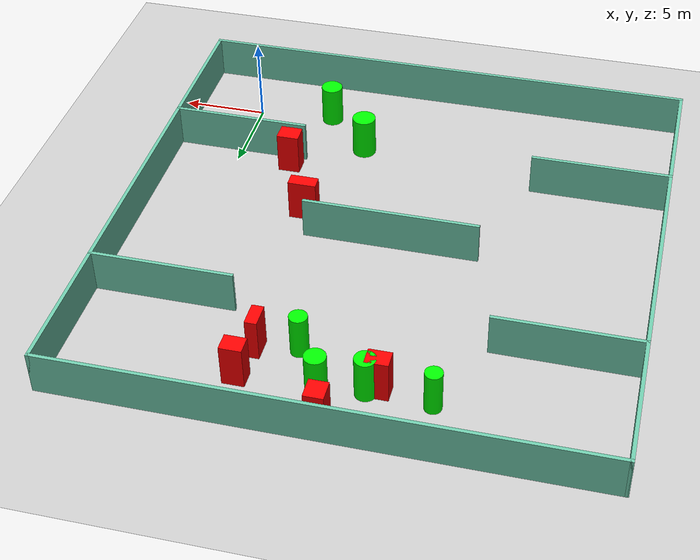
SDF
<sdf version="1.7">
 <world name="default">
  <light name="sun" type="directional">
   <pose>0 0 10 0 -0 0</pose>
   <diffuse>0.8 0.8 0.8 1</diffuse>
   <specular>0.2 0.2 0.2 1</specular>
   <attenuation>
    <range>1000</range>
    <constant>0.9</constant>
    <linear>0.01</linear>
    <quadratic>0.001</quadratic>
   </attenuation>
   <direction>-0.5 0.1 -0.9</direction>
   <spot><inner_angle>0</inner_angle><outer_angle>0</outer_angle><falloff>0</falloff></spot>
  </light>
  <model name="ground_plane">
   <static>1</static>
   <link name="link">
    <collision name="collision">
     <geometry><plane><normal>0 0 1</normal><size>100 100</size></plane></geometry>
     <surface>
      <contact><collide_bitmask>65535</collide_bitmask></contact>
      <friction><ode><mu>100</mu><mu2>50</mu2></ode></friction>
     </surface>
    </collision>
    <visual name="visual">
     <cast_shadows>0</cast_shadows>
     <geometry><plane><normal>0 0 1</normal><size>100 100</size></plane></geometry>
     <material>
      <script><uri>file://media/materials/scripts/gazebo.material</uri><name>Gazebo/Grey</name></script>
     </material>
    </visual>
   </link>
  </model>
  <gravity>0 0 -9.8</gravity>
  <magnetic_field>6e-06 2.3e-05 -4.2e-05</magnetic_field>
  <atmosphere type="adiabatic"/>
  <physics type="ode">
   <max_step_size>0.001</max_step_size>
   <real_time_factor>1</real_time_factor>
   <real_time_update_rate>1000</real_time_update_rate>
  </physics>
  <scene><ambient>0.4 0.4 0.4 1</ambient><background>0.7 0.7 0.7 1</background><shadows>1</shadows></scene>
  <spherical_coordinates>
   <surface_model>EARTH_WGS84</surface_model>
   <latitude_deg>0</latitude_deg>
   <longitude_deg>0</longitude_deg>
   <elevation>0</elevation>
   <heading_deg>0</heading_deg>
  </spherical_coordinates>
  <model name="my_base_walls">
   <link name="Wall_10">
    <collision name="Wall_10_Collision">
     <geometry><box><size>8.2 0.2 2.5</size></box></geometry>
     <pose>0 0 1.25 0 -0 0</pose>
    </collision>
    <visual name="Wall_10_Visual">
     <pose>0 0 1.25 0 -0 0</pose>
     <geometry><box><size>8.2 0.2 2.5</size></box></geometry>
     <material>
      <script><uri>file://media/materials/scripts/gazebo.material</uri><name>Gazebo/Grey</name></script>
      <ambient>0.435294 0.796078 0.67451 1</ambient>
     </material>
     <meta><layer>0</layer></meta>
    </visual>
    <pose>-11 -7 0 0 -0 0</pose>
   </link>
   <link name="Wall_12">
    <collision name="Wall_12_Collision">
     <geometry><box><size>8.2 0.2 2.5</size></box></geometry>
     <pose>0 0 1.25 0 -0 0</pose>
    </collision>
    <visual name="Wall_12_Visual">
     <pose>0 0 1.25 0 -0 0</pose>
     <geometry><box><size>8.2 0.2 2.5</size></box></geometry>
     <material>
      <script><uri>file://media/materials/scripts/gazebo.material</uri><name>Gazebo/Grey</name></script>
      <ambient>0.435294 0.796078 0.67451 1</ambient>
     </material>
     <meta><layer>0</layer></meta>
    </visual>
    <pose>-11 7 0 0 -0 0</pose>
   </link>
   <link name="Wall_14">
    <collision name="Wall_14_Collision">
     <geometry><box><size>8.2 0.2 2.5</size></box></geometry>
     <pose>0 0 1.25 0 -0 0</pose>
    </collision>
    <visual name="Wall_14_Visual">
     <pose>0 0 1.25 0 -0 0</pose>
     <geometry><box><size>8.2 0.2 2.5</size></box></geometry>
     <material>
      <script><uri>file://media/materials/scripts/gazebo.material</uri><name>Gazebo/Grey</name></script>
      <ambient>0.435294 0.796078 0.67451 1</ambient>
     </material>
     <meta><layer>0</layer></meta>
    </visual>
    <pose>11 7 0 0 -0 3.14159</pose>
   </link>
   <link name="Wall_16">
    <collision name="Wall_16_Collision">
     <geometry><box><size>10.2 0.2 2.5</size></box></geometry>
     <pose>0 0 1.25 0 -0 0</pose>
    </collision>
    <visual name="Wall_16_Visual">
     <pose>0 0 1.25 0 -0 0</pose>
     <geometry><box><size>10.2 0.2 2.5</size></box></geometry>
     <material>
      <script><uri>file://media/materials/scripts/gazebo.material</uri><name>Gazebo/Grey</name></script>
      <ambient>0.435294 0.796078 0.67451 1</ambient>
     </material>
     <meta><layer>0</layer></meta>
    </visual>
    <pose>0 0 0 0 -0 3.14159</pose>
   </link>
   <link name="Wall_2">
    <collision name="Wall_2_Collision">
     <geometry><box><size>30.2 0.2 2.5</size></box></geometry>
     <pose>0 0 1.25 0 -0 0</pose>
    </collision>
    <visual name="Wall_2_Visual">
     <pose>0 0 1.25 0 -0 0</pose>
     <geometry><box><size>30.2 0.2 2.5</size></box></geometry>
     <material>
      <script><uri>file://media/materials/scripts/gazebo.material</uri><name>Gazebo/Grey</name></script>
      <ambient>0.435294 0.796078 0.67451 1</ambient>
     </material>
     <meta><layer>0</layer></meta>
    </visual>
    <pose>0 -15 0 0 -0 3.14159</pose>
   </link>
   <link name="Wall_3">
    <collision name="Wall_3_Collision">
     <geometry><box><size>30.2 0.2 2.5</size></box></geometry>
     <pose>0 0 1.25 0 -0 0</pose>
    </collision>
    <visual name="Wall_3_Visual">
     <pose>0 0 1.25 0 -0 0</pose>
     <geometry><box><size>30.2 0.2 2.5</size></box></geometry>
     <material>
      <script><uri>file://media/materials/scripts/gazebo.material</uri><name>Gazebo/Grey</name></script>
      <ambient>0.435294 0.796078 0.67451 1</ambient>
     </material>
     <meta><layer>0</layer></meta>
    </visual>
    <pose>-15 0 0 0 -0 1.5708</pose>
   </link>
   <link name="Wall_4">
    <collision name="Wall_4_Collision">
     <geometry><box><size>30.2 0.2 2.5</size></box></geometry>
     <pose>0 0 1.25 0 -0 0</pose>
    </collision>
    <visual name="Wall_4_Visual">
     <pose>0 0 1.25 0 -0 0</pose>
     <geometry><box><size>30.2 0.2 2.5</size></box></geometry>
     <material>
      <script><uri>file://media/materials/scripts/gazebo.material</uri><name>Gazebo/Grey</name></script>
      <ambient>0.435294 0.796078 0.67451 1</ambient>
     </material>
     <meta><layer>0</layer></meta>
    </visual>
    <pose>0 15 0 0 -0 0</pose>
   </link>
   <link name="Wall_6">
    <collision name="Wall_6_Collision">
     <geometry><box><size>30.2 0.2 2.5</size></box></geometry>
     <pose>0 0 1.25 0 -0 0</pose>
    </collision>
    <visual name="Wall_6_Visual">
     <pose>0 0 1.25 0 -0 0</pose>
     <geometry><box><size>30.2 0.2 2.5</size></box></geometry>
     <material>
      <script><uri>file://media/materials/scripts/gazebo.material</uri><name>Gazebo/Grey</name></script>
      <ambient>0.435294 0.796078 0.67451 1</ambient>
     </material>
     <meta><layer>0</layer></meta>
    </visual>
    <pose>15 0 0 0 -0 1.5708</pose>
   </link>
   <link name="Wall_8">
    <collision name="Wall_8_Collision">
     <geometry><box><size>8.2 0.2 2.5</size></box></geometry>
     <pose>0 0 1.25 0 -0 0</pose>
    </collision>
    <visual name="Wall_8_Visual">
     <pose>0 0 1.25 0 -0 0</pose>
     <geometry><box><size>8.2 0.2 2.5</size></box></geometry>
     <material>
      <script><uri>file://media/materials/scripts/gazebo.material</uri><name>Gazebo/Grey</name></script>
      <ambient>0.435294 0.796078 0.67451 1</ambient>
     </material>
     <meta><layer>0</layer></meta>
    </visual>
    <pose>11 -7 0 0 -0 3.14159</pose>
   </link>
   <static>1</static>
   <pose>-11 11 0 0 -0 0</pose>
  </model>
  <model name="cylinder1">
   <static>1</static>
   <link name="link">
    <inertial>
     <mass>1</mass>
     <inertia><ixx>0.5</ixx><ixy>0</ixy><ixz>0</ixz><iyy>0.5</iyy><iyz>0</iyz><izz>1</izz></inertia>
    </inertial>
    <collision name="collision">
     <geometry><cylinder><radius>0.6412446513178736</radius><length>2.5</length></cylinder></geometry>
    </collision>
    <visual name="visual">
     <geometry><cylinder><radius>0.6412446513178736</radius><length>2.5</length></cylinder></geometry>
     <material>
      <ambient>0 1 0 1</ambient>
      <diffuse>0 1 0 1</diffuse>
      <specular>0.1 0.1 0.1 1</specular>
      <emissive>0 0 0 0</emissive>
     </material>
    </visual>
   </link>
   <pose>-4.579656421118942 -0.3813518939534557 1.25 0 0 0</pose>
  </model>
  <model name="cylinder2">
   <static>1</static>
   <link name="link">
    <inertial>
     <mass>1</mass>
     <inertia><ixx>0.5</ixx><ixy>0</ixy><ixz>0</ixz><iyy>0.5</iyy><iyz>0</iyz><izz>1</izz></inertia>
    </inertial>
    <collision name="collision">
     <geometry><cylinder><radius>0.480000230479129</radius><length>2.5</length></cylinder></geometry>
    </collision>
    <visual name="visual">
     <geometry><cylinder><radius>0.480000230479129</radius><length>2.5</length></cylinder></geometry>
     <material>
      <ambient>0 1 0 1</ambient>
      <diffuse>0 1 0 1</diffuse>
      <specular>0.1 0.1 0.1 1</specular>
      <emissive>0 0 0 0</emissive>
     </material>
    </visual>
   </link>
   <pose>-15.951282014921407 22.59276208914236 1.25 0 0 0</pose>
  </model>
  <model name="cylinder3">
   <static>1</static>
   <link name="link">
    <inertial>
     <mass>1</mass>
     <inertia><ixx>0.5</ixx><ixy>0</ixy><ixz>0</ixz><iyy>0.5</iyy><iyz>0</iyz><izz>1</izz></inertia>
    </inertial>
    <collision name="collision">
     <geometry><cylinder><radius>0.5975415113366327</radius><length>2.5</length></cylinder></geometry>
    </collision>
    <visual name="visual">
     <geometry><cylinder><radius>0.5975415113366327</radius><length>2.5</length></cylinder></geometry>
     <material>
      <ambient>0 1 0 1</ambient>
      <diffuse>0 1 0 1</diffuse>
      <specular>0.1 0.1 0.1 1</specular>
      <emissive>0 0 0 0</emissive>
     </material>
    </visual>
   </link>
   <pose>-9.952645491072607 22.837459596538842 1.25 0 0 0</pose>
  </model>
  <model name="cylinder4">
   <static>1</static>
   <link name="link">
    <inertial>
     <mass>1</mass>
     <inertia><ixx>0.5</ixx><ixy>0</ixy><ixz>0</ixz><iyy>0.5</iyy><iyz>0</iyz><izz>1</izz></inertia>
    </inertial>
    <collision name="collision">
     <geometry><cylinder><radius>0.5123890158900124</radius><length>2.5</length></cylinder></geometry>
    </collision>
    <visual name="visual">
     <geometry><cylinder><radius>0.5123890158900124</radius><length>2.5</length></cylinder></geometry>
     <material>
      <ambient>0 1 0 1</ambient>
      <diffuse>0 1 0 1</diffuse>
      <specular>0.1 0.1 0.1 1</specular>
      <emissive>0 0 0 0</emissive>
     </material>
    </visual>
   </link>
   <pose>-8.338464490711472 20.248426040601792 1.25 0 0 0</pose>
  </model>
  <model name="cylinder5">
   <static>1</static>
   <link name="link">
    <inertial>
     <mass>1</mass>
     <inertia><ixx>0.5</ixx><ixy>0</ixy><ixz>0</ixz><iyy>0.5</iyy><iyz>0</iyz><izz>1</izz></inertia>
    </inertial>
    <collision name="collision">
     <geometry><cylinder><radius>0.5901477914748372</radius><length>2.5</length></cylinder></geometry>
    </collision>
    <visual name="visual">
     <geometry><cylinder><radius>0.5901477914748372</radius><length>2.5</length></cylinder></geometry>
     <material>
      <ambient>0 1 0 1</ambient>
      <diffuse>0 1 0 1</diffuse>
      <specular>0.1 0.1 0.1 1</specular>
      <emissive>0 0 0 0</emissive>
     </material>
    </visual>
   </link>
   <pose>-12.425126125936625 22.423629759121585 1.25 0 0 0</pose>
  </model>
  <model name="cylinder6">
   <static>1</static>
   <link name="link">
    <inertial>
     <mass>1</mass>
     <inertia><ixx>0.5</ixx><ixy>0</ixy><ixz>0</ixz><iyy>0.5</iyy><iyz>0</iyz><izz>1</izz></inertia>
    </inertial>
    <collision name="collision">
     <geometry><cylinder><radius>0.699558110948249</radius><length>2.5</length></cylinder></geometry>
    </collision>
    <visual name="visual">
     <geometry><cylinder><radius>0.699558110948249</radius><length>2.5</length></cylinder></geometry>
     <material>
      <ambient>0 1 0 1</ambient>
      <diffuse>0 1 0 1</diffuse>
      <specular>0.1 0.1 0.1 1</specular>
      <emissive>0 0 0 0</emissive>
     </material>
    </visual>
   </link>
   <pose>-7.351822467280787 2.4246082824170507 1.25 0 0 0</pose>
  </model>
  <model name="box1">
   <static>1</static>
   <link name="link">
    <inertial>
     <mass>1</mass>
     <inertia><ixx>0.083</ixx><ixy>0</ixy><ixz>0</ixz><iyy>0.083</iyy><iyz>0</iyz><izz>0.083</izz></inertia>
    </inertial>
    <collision name="collision">
     <geometry><box><size>1.0805338956191286 1.1718555379355353 2.5</size></box></geometry>
    </collision>
    <visual name="visual">
     <geometry><box><size>1.0805338956191286 1.1718555379355353 2.5</size></box></geometry>
     <material>
      <ambient>1 0 0 1</ambient>
      <diffuse>1 0 0 1</diffuse>
      <specular>0.1 0.1 0.1 1</specular>
      <emissive>0 0 0 0</emissive>
     </material>
    </visual>
    <sensor name="my_contact" type="contact">
     <contact><collision>box_collision</collision><topic>__default_topic__</topic></contact>
    </sensor>
   </link>
   <pose>-10.608961107697628 24.986198166164655 1.25 0 0 0</pose>
  </model>
  <model name="box2">
   <static>1</static>
   <link name="link">
    <inertial>
     <mass>1</mass>
     <inertia><ixx>0.083</ixx><ixy>0</ixy><ixz>0</ixz><iyy>0.083</iyy><iyz>0</iyz><izz>0.083</izz></inertia>
    </inertial>
    <collision name="collision">
     <geometry><box><size>1.2965482125189332 1.068807908776364 2.5</size></box></geometry>
    </collision>
    <visual name="visual">
     <geometry><box><size>1.2965482125189332 1.068807908776364 2.5</size></box></geometry>
     <material>
      <ambient>1 0 0 1</ambient>
      <diffuse>1 0 0 1</diffuse>
      <specular>0.1 0.1 0.1 1</specular>
      <emissive>0 0 0 0</emissive>
     </material>
    </visual>
    <sensor name="my_contact" type="contact">
     <contact><collision>box_collision</collision><topic>__default_topic__</topic></contact>
    </sensor>
   </link>
   <pose>-3.3758152200921607 4.937408883471767 1.25 0 0 0</pose>
  </model>
  <model name="box3">
   <static>1</static>
   <link name="link">
    <inertial>
     <mass>1</mass>
     <inertia><ixx>0.083</ixx><ixy>0</ixy><ixz>0</ixz><iyy>0.083</iyy><iyz>0</iyz><izz>0.083</izz></inertia>
    </inertial>
    <collision name="collision">
     <geometry><box><size>1.2783006680257403 0.9851195473579489 2.5</size></box></geometry>
    </collision>
    <visual name="visual">
     <geometry><box><size>1.2783006680257403 0.9851195473579489 2.5</size></box></geometry>
     <material>
      <ambient>1 0 0 1</ambient>
      <diffuse>1 0 0 1</diffuse>
      <specular>0.1 0.1 0.1 1</specular>
      <emissive>0 0 0 0</emissive>
     </material>
    </visual>
    <sensor name="my_contact" type="contact">
     <contact><collision>box_collision</collision><topic>__default_topic__</topic></contact>
    </sensor>
   </link>
   <pose>-13.044960640211206 22.19945166224651 1.25 0 0 0</pose>
  </model>
  <model name="box4">
   <static>1</static>
   <link name="link">
    <inertial>
     <mass>1</mass>
     <inertia><ixx>0.083</ixx><ixy>0</ixy><ixz>0</ixz><iyy>0.083</iyy><iyz>0</iyz><izz>0.083</izz></inertia>
    </inertial>
    <collision name="collision">
     <geometry><box><size>1.2254987090015679 1.0159806714245032 2.5</size></box></geometry>
    </collision>
    <visual name="visual">
     <geometry><box><size>1.2254987090015679 1.0159806714245032 2.5</size></box></geometry>
     <material>
      <ambient>1 0 0 1</ambient>
      <diffuse>1 0 0 1</diffuse>
      <specular>0.1 0.1 0.1 1</specular>
      <emissive>0 0 0 0</emissive>
     </material>
    </visual>
    <sensor name="my_contact" type="contact">
     <contact><collision>box_collision</collision><topic>__default_topic__</topic></contact>
    </sensor>
   </link>
   <pose>-5.691769665393327 22.90054181091709 1.25 0 0 0</pose>
  </model>
  <model name="box5">
   <static>1</static>
   <link name="link">
    <inertial>
     <mass>1</mass>
     <inertia><ixx>0.083</ixx><ixy>0</ixy><ixz>0</ixz><iyy>0.083</iyy><iyz>0</iyz><izz>0.083</izz></inertia>
    </inertial>
    <collision name="collision">
     <geometry><box><size>1.6377945788316248 0.791915067395266 2.5</size></box></geometry>
    </collision>
    <visual name="visual">
     <geometry><box><size>1.6377945788316248 0.791915067395266 2.5</size></box></geometry>
     <material>
      <ambient>1 0 0 1</ambient>
      <diffuse>1 0 0 1</diffuse>
      <specular>0.1 0.1 0.1 1</specular>
      <emissive>0 0 0 0</emissive>
     </material>
    </visual>
    <sensor name="my_contact" type="contact">
     <contact><collision>box_collision</collision><topic>__default_topic__</topic></contact>
    </sensor>
   </link>
   <pose>-5.46629588127605 9.29084868286456 1.25 0 0 0</pose>
  </model>
  <model name="box6">
   <static>1</static>
   <link name="link">
    <inertial>
     <mass>1</mass>
     <inertia><ixx>0.083</ixx><ixy>0</ixy><ixz>0</ixz><iyy>0.083</iyy><iyz>0</iyz><izz>0.083</izz></inertia>
    </inertial>
    <collision name="collision">
     <geometry><box><size>0.6733397012683866 1.3552388398739985 2.5</size></box></geometry>
    </collision>
    <visual name="visual">
     <geometry><box><size>0.6733397012683866 1.3552388398739985 2.5</size></box></geometry>
     <material>
      <ambient>1 0 0 1</ambient>
      <diffuse>1 0 0 1</diffuse>
      <specular>0.1 0.1 0.1 1</specular>
      <emissive>0 0 0 0</emissive>
     </material>
    </visual>
    <sensor name="my_contact" type="contact">
     <contact><collision>box_collision</collision><topic>__default_topic__</topic></contact>
    </sensor>
   </link>
   <pose>-6.105641495689012 20.642417912871036 1.25 0 0 0</pose>
  </model>
 </world>
</sdf>
